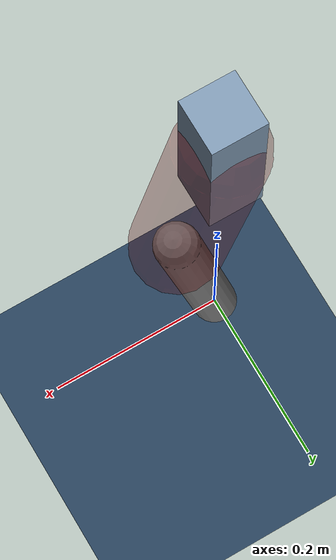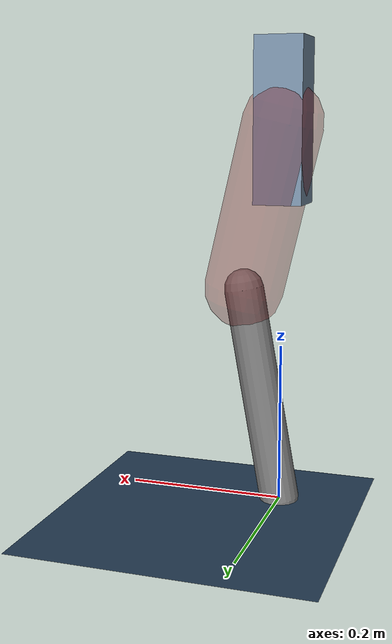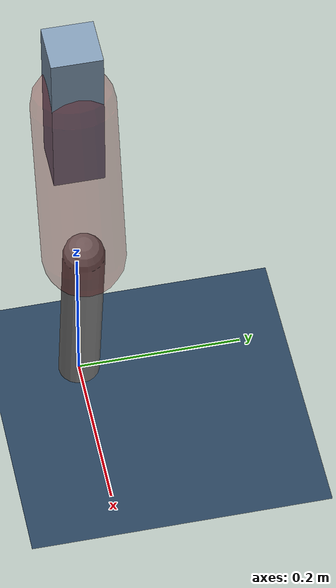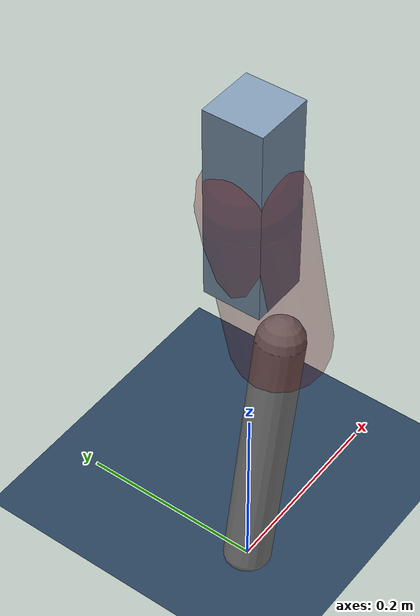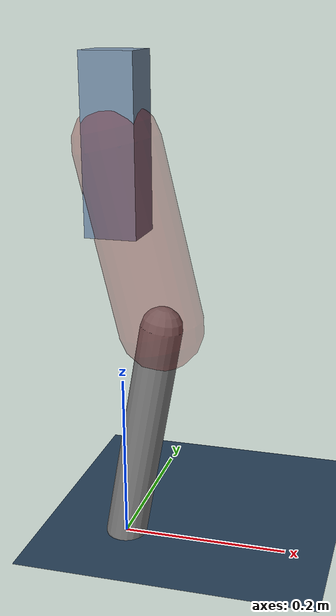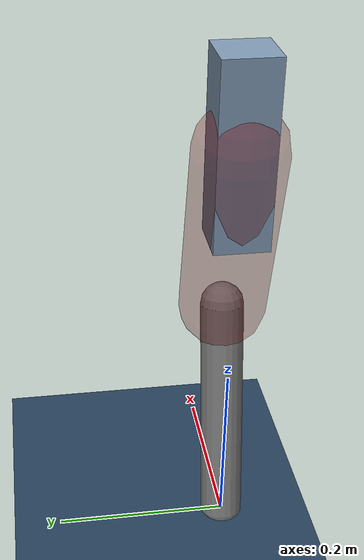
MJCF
<mujoco model="Hopper2D">
	<compiler inertiafromgeom="true" angle="radian" />
	<option timestep="0.001" integrator="implicit" cone="elliptic" solver="Newton" tolerance="1e-10" />

	<default>
		<geom contype="1" conaffinity="1" condim="3" friction="2 0.005 0.0001" solref="0.005 1" />
		<joint limited="true" damping="0.1" />
	</default>

	<asset>
		<texture name="skybox" type="skybox" builtin="gradient" rgb1=".4 .6 .8" rgb2="0 0 0" width="800" height="800" />
		<texture name="grid" type="2d" builtin="checker" rgb1=".1 .2 .3" rgb2=".2 .3 .4" width="300" height="300" mark="edge" markrgb=".2 .3 .4" />
		<material name="ground" texture="grid" texrepeat="1 1" texuniform="true" reflectance="0.1" />
		<material name="leg" rgba="0.5 0.6 0.7 1" />
	</asset>

	<worldbody>

		<geom name="floor" type="plane" size="5 5 0.25" material="ground" />

		<light directional="false" diffuse="0.8 0.8 0.8" specular="0.3 0.3 0.3" pos="0 0 2" dir="0 0 -1" />
		<light mode="targetbodycom" target="base" directional="false" diffuse="0.8 0.8 0.8" specular="0.3 0.3 0.3" pos="0 0 2" dir="0 0 -1" />

		<camera name="fixed" pos="0 -2 1" xyaxes="1 0 0 0 0 1" />
		<camera name="tracking" mode="trackcom" pos="0 -3 1" />

		<body name="root" pos="0 0 0.4796912523670491">
			<joint name="slide_x" type="slide" axis="1 0 0" range="-100 100" />
			<joint name="slide_z" type="slide" axis="0 0 1" range="0 10" />

			<body name="base" pos="0 0 0">
				<geom name="torso" type="box" size="0.03 0.03 0.1" mass="2.183" material="leg" />

				<body name="link1" pos="0 0 0" euler="0 1.340157933373653 0">
					<joint type="hinge" axis="0 -1 0" pos="0 0 0" name="hinge1" limited="true" range="-3.14 3.14" stiffness="0" damping="0.1" />
					<geom name="thigh" type="capsule" fromto="0 0 0 0.21350241982363546 0 0" size="0.05" rgba="0.5 0 0 0.3" mass="0.7633560495590886" />

					<body name="link2" pos="0.21350241982363546 0 0" euler="0 0.40828536591763637 0">
						<joint type="hinge" axis="0 -1 0" pos="0 0 0" name="hinge2" limited="true" range="-3.14 3.14" stiffness="0" damping="0.1" />
						<geom name="shank" type="capsule" fromto="0 0 0 0.2761888325434137 0 0" size="0.025" mass="0.4640510660347309" />

					</body>
				</body>
			</body>
		</body>
	</worldbody>

	<actuator>
		<motor name="torque1" joint="hinge1" ctrlrange="-69.15650265772723 69.15650265772723" ctrllimited="true" gear="1" />
		<motor name="torque2" joint="hinge2" ctrlrange="-39.83138876629969 39.83138876629969" ctrllimited="true" gear="1" />
	</actuator>
</mujoco>
